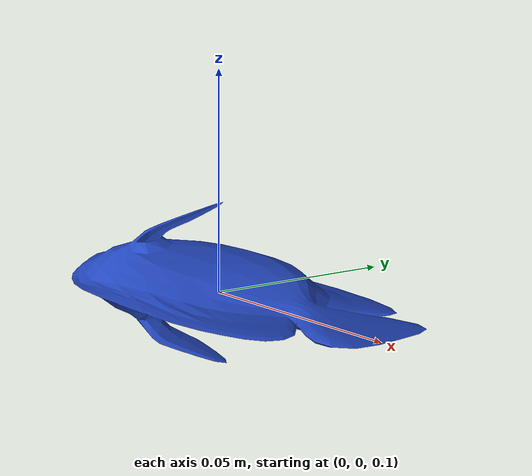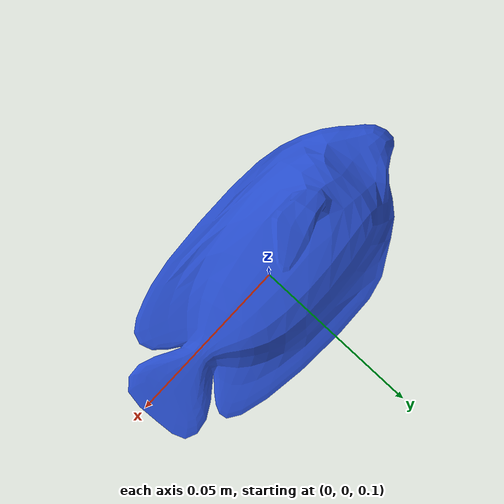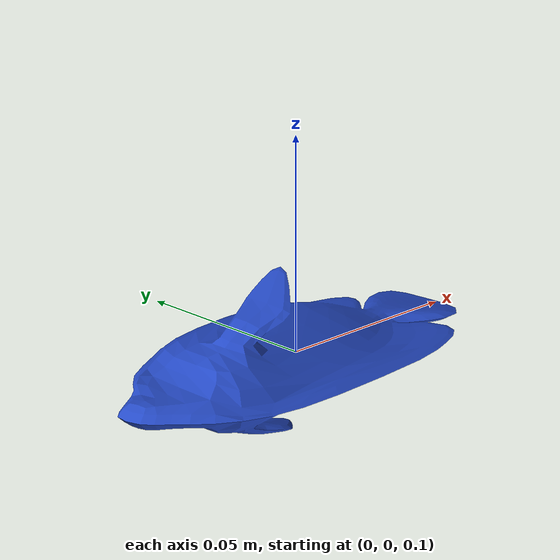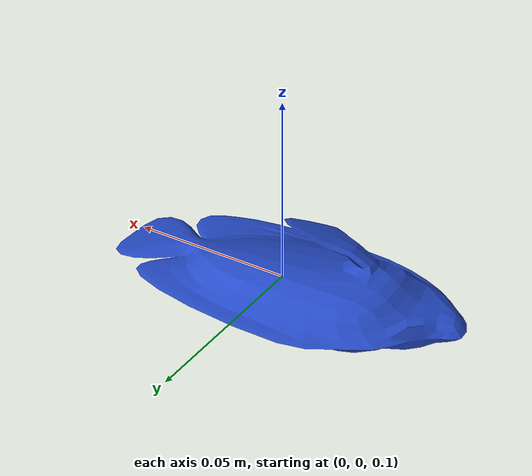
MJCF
<mujoco model="fish_blue">
    <asset>
        <mesh name="fish_blue_mesh" file="asset/fish_blue.obj" scale="2 2 2"/>
        <texture name="fish_blue_tex" type="2d" file="asset/fish_blue.png"/>
        <material name="fish_blue_mat" texture="fish_blue_tex" specular="0.3"/>
    </asset>
    <worldbody>
        <body name="fish_blue_obj" pos="0 0 0.1" euler="0 90 0">
        <freejoint/>
        <geom type="mesh" mesh="fish_blue_mesh" material="fish_blue_mat" mass="0.2" friction="3 10.0 10.0" solimp="0.95 0.99 0.001" solref="0.015 1" margin="0.005" group="2"/>
    </body>
    </worldbody>
</mujoco>
